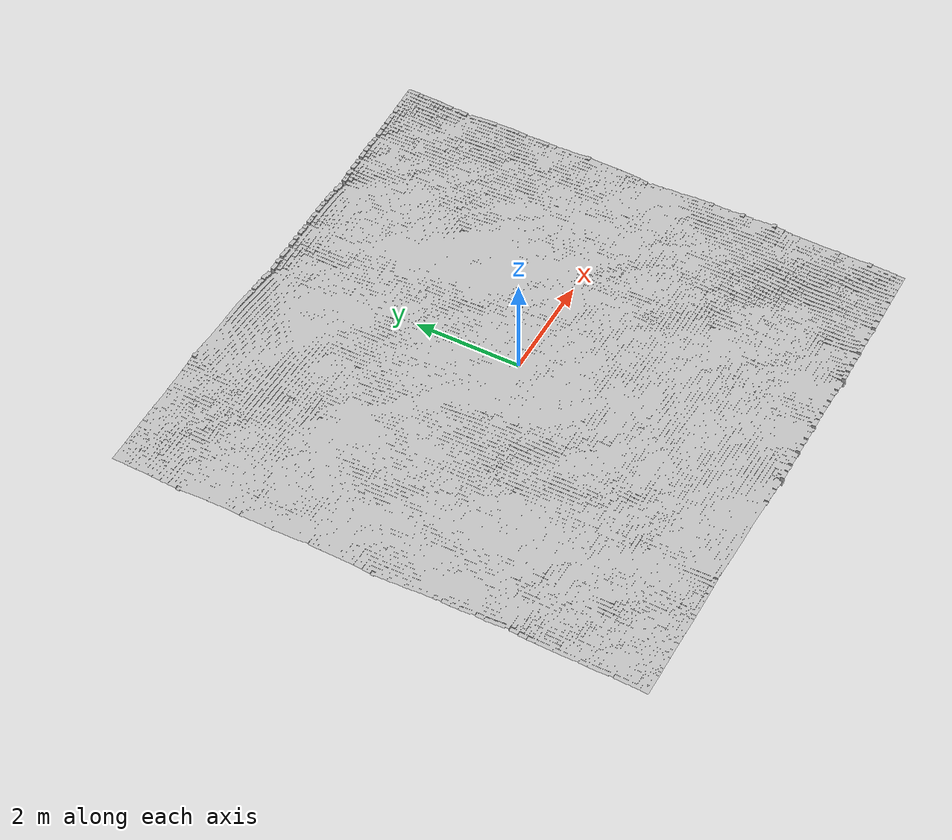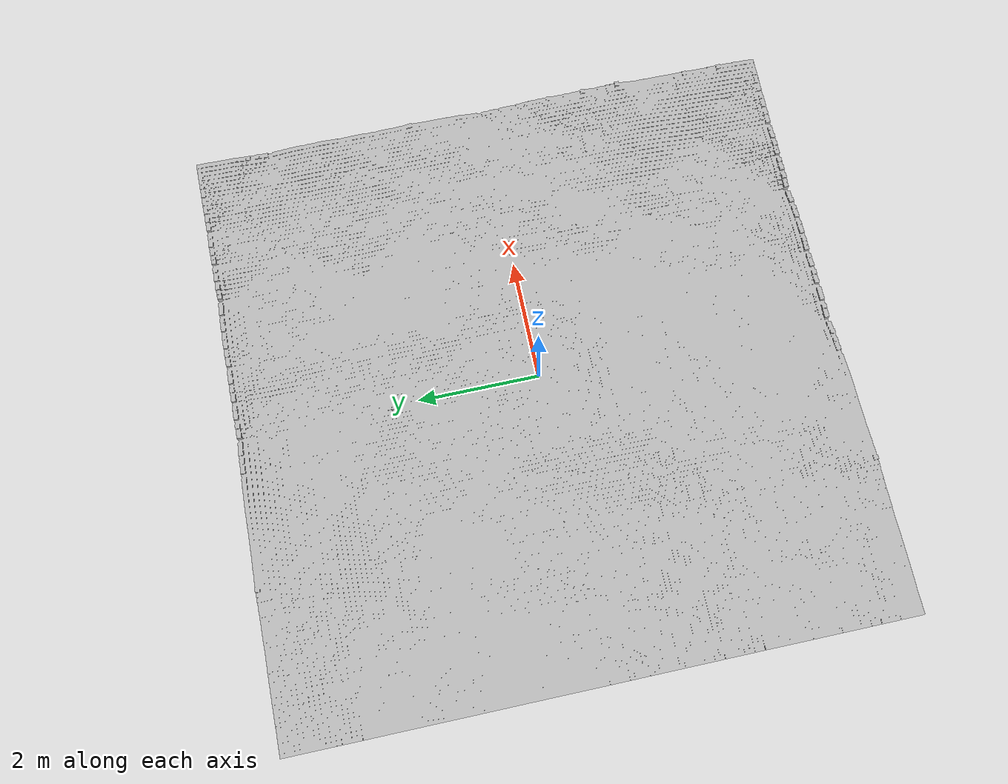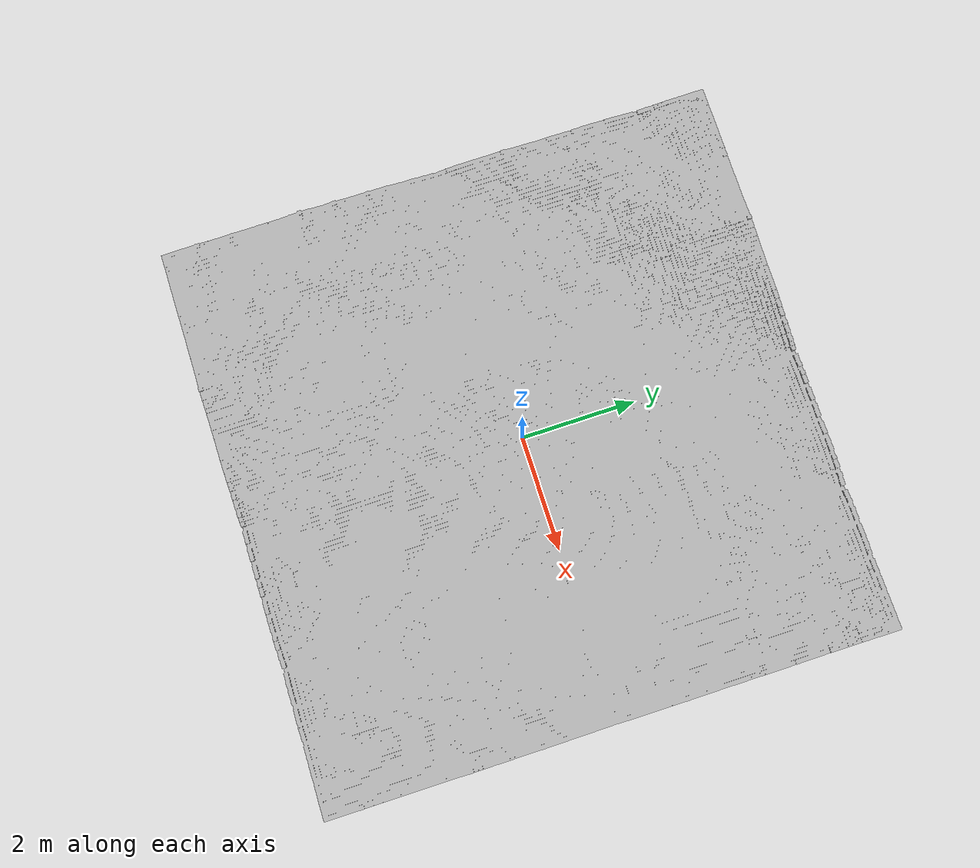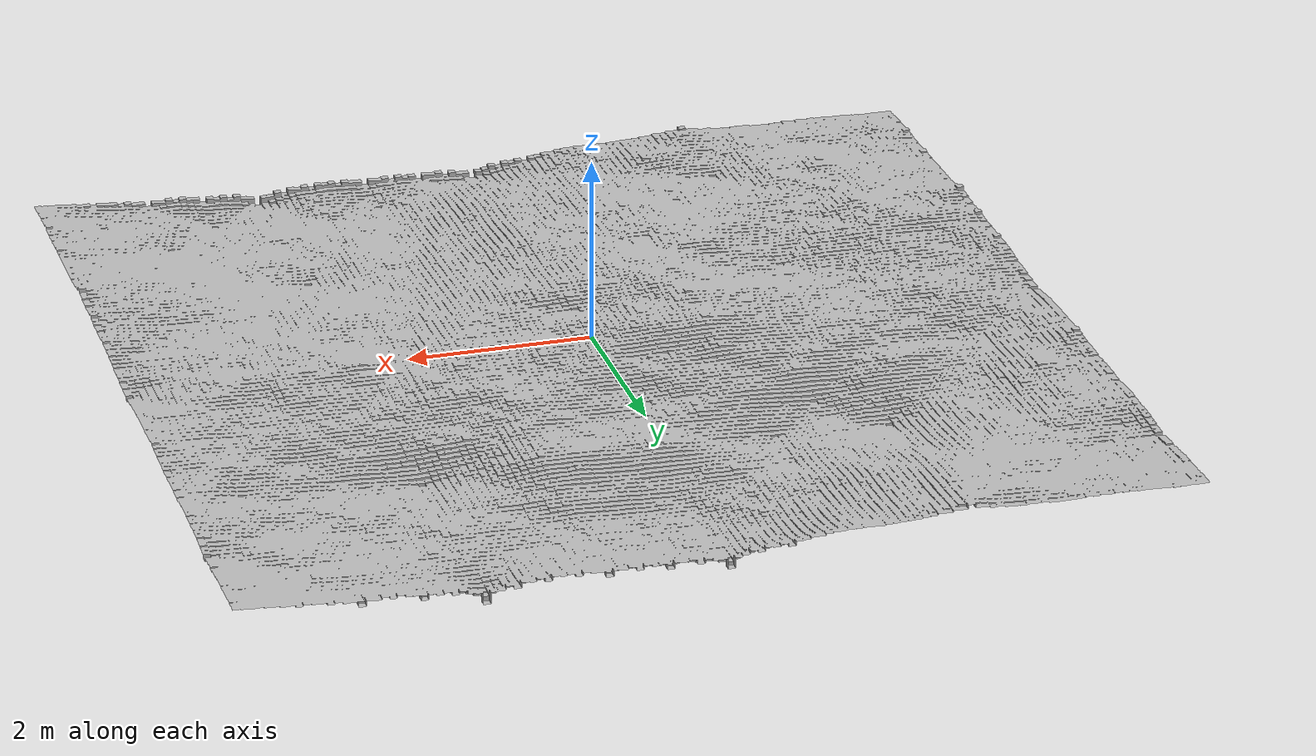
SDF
<?xml version="1.0" ?>
<sdf version="1.4">
  <world name="default">
    <include>
      <uri>model://sun</uri>
    </include>
    <include>
      <uri>model://models/rough</uri>
    </include>
    <physics type="ode">
      <gravity>0 0 -9.81</gravity>
    </physics>
  </world>
</sdf>

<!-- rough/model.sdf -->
<sdf version="1.4">
  <model name="rough">
    <pose>0 0 0 0 0 0</pose>
    <static>true</static>
    <link name="rough_link">
      <collision name="rough_collision">
        <pose>0 0 0 0 0 0</pose>
        <geometry>
          <mesh>
            <uri>model://meshes/random_rough_surface.dae</uri>
          </mesh>
        </geometry>
      </collision>
      <visual name="rough_visual">
        <pose>0 0 0 0 0 0</pose>
        <geometry>
          <mesh>
            <uri>model://meshes/random_rough_surface.dae</uri>
          </mesh>
        </geometry>
      </visual>
    </link>
  </model>
</sdf>
